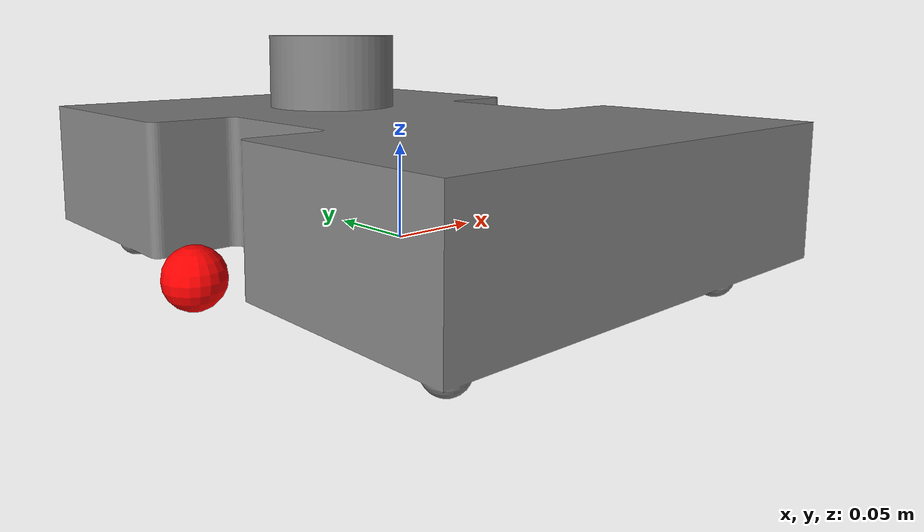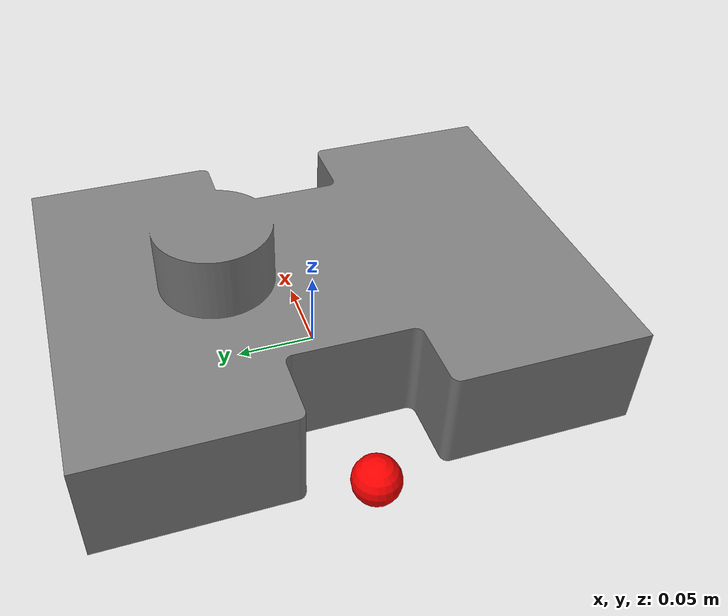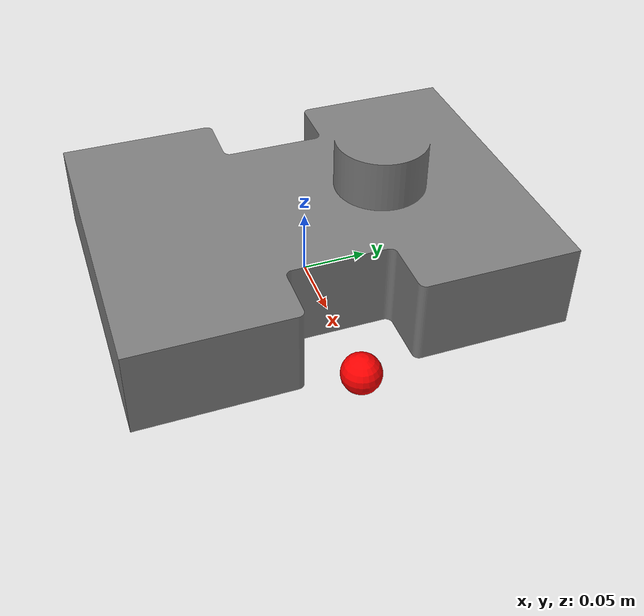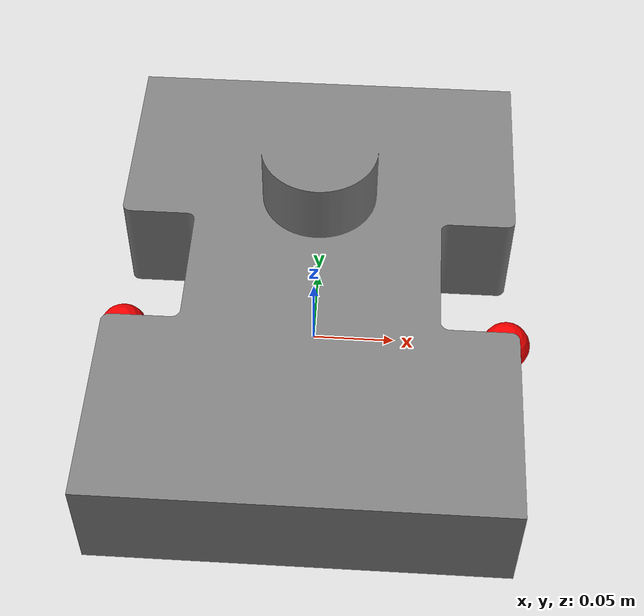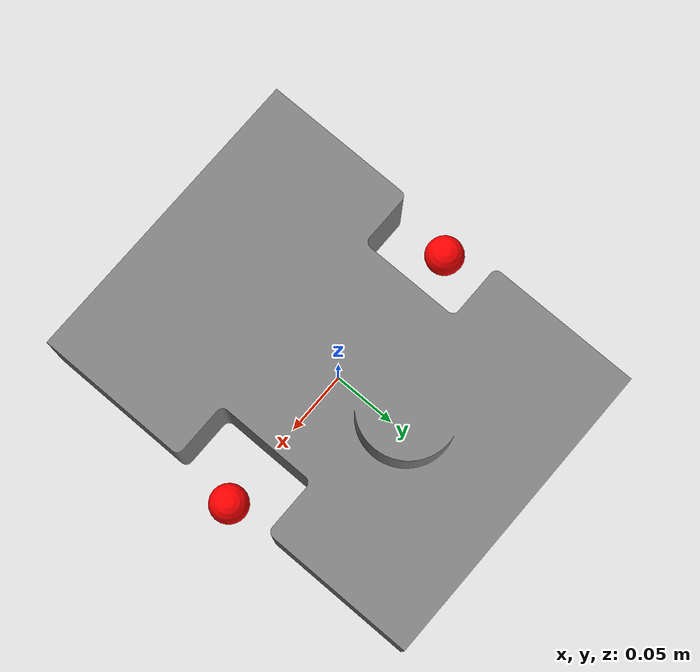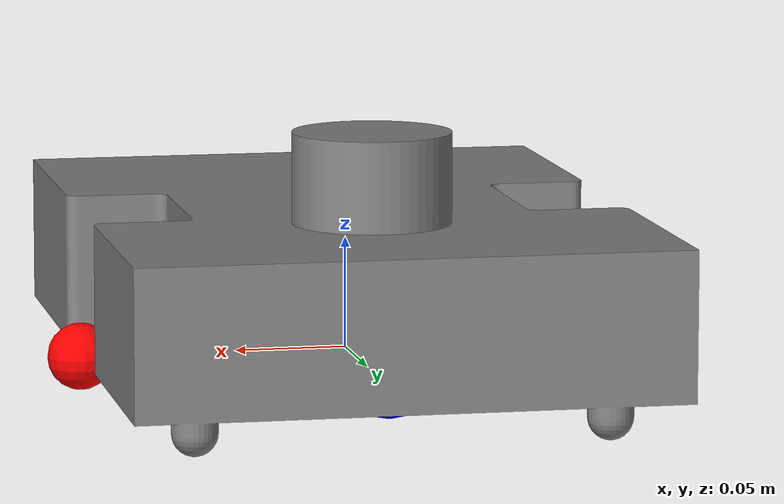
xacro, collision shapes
<?xml version="1.0"?>
<robot xmlns:xacro="http://www.ros.org/wiki/xacro">

    <xacro:include filename="$(find articubot_two)/description/inertial_macros.xacro" />
    <!-- BASE LINK -->

    <link name="base_link">

    </link>

    <!-- BASE_footprint LINK -->

    <joint name="base_footprint_joint" type="fixed">
        <parent link="base_link"/>
        <child link="base_footprint"/>
        <origin xyz="0 0 0" rpy="0 0 0"/>
    </joint>
    <link name="base_footprint">
    </link>

    <!-- CHASSIS LINK -->

    <joint name="chassis_joint" type="fixed">
        <parent link="base_link"/>
        <child link="chassis"/>
        <origin xyz="0 0 0" rpy="0 0 0"/>
    </joint>
    <link name="chassis">
        <visual>
            <origin xyz="0 0 0" rpy="0 0 0"/>
            <geometry>
                <mesh filename="file://$(find articubot_two)/meshes/chassis.stl" scale="0.001 0.001 0.001"/>
            </geometry>
            <material name="grey">
                <color rgba="0.5 0.5 0.5 1"/>
            </material>
        </visual>
        <collision>
            <geometry>
                <mesh filename="file://$(find articubot_two)/meshes/chassis.stl" scale="0.001 0.001 0.001"/>
            </geometry>
        </collision>
        <xacro:inertial_box mass="1.0" x="0.24" y="0.18" z="0.04">
            <origin xyz="0 0 0" rpy="0 0 0"/>
        </xacro:inertial_box>
    </link>
    <gazebo reference="chassis">
        <material>Gazebo/Orange</material>
    </gazebo>

    <!-- LEFT WHEEL LINK -->

    <joint name="left_wheel_joint" type="continuous">
        <parent link="base_link"/>
        <child link="left_wheel"/>
        <origin xyz="0 0.09 0.02" rpy="${-pi/2} 0 0"/>
        <axis xyz="0 0 1"/>
    </joint>
    <link name="left_wheel">
        <visual>
            <geometry>
                <mesh filename="file://$(find articubot_two)/meshes/wheel.stl" scale="0.001 0.001 0.001"/>
            </geometry>
            <material name="blue">
                <color rgba="0 0 1 1"/>
            </material>
        </visual>
        <collision>
            <geometry>
                <sphere radius="0.035" />
            </geometry>
        </collision>
        <xacro:inertial_cylinder mass="0.2" radius="0.07" length="0.02">
            <origin xyz="0 0 0" rpy="0 0 0"/>
        </xacro:inertial_cylinder>
    </link>
    <gazebo reference="left_wheel">
        <material>Gazebo/Blue</material>
        <mu1>1.0</mu1>
        <mu2>1.0</mu2>
    </gazebo>

    <!-- RIGHT WHEEL LINK -->

    <joint name="right_wheel_joint" type="continuous">
        <parent link="base_link"/>
        <child link="right_wheel"/>
        <origin xyz="0 -0.09 0.02" rpy="${pi/2} 0 0"/>
        <axis xyz="0 0 -1"/>
    </joint>
    <link name="right_wheel">
        <visual>
            <geometry>
                <mesh filename="file://$(find articubot_two)/meshes/wheel.stl" scale="0.001 0.001 0.001"/>
            </geometry>
            <material name="blue">
                <color rgba="0 0 1 1"/>
            </material>
        </visual>
        <collision>
            <geometry>
                <sphere radius="0.035" />
            </geometry>
        </collision>
        <xacro:inertial_cylinder mass="0.2" radius="0.07" length="0.02">
            <origin xyz="0 0 0" rpy="0 0 0"/>
        </xacro:inertial_cylinder>
    </link>
    <gazebo reference="right_wheel">
        <material>Gazebo/Blue</material>
        <mu1>1.0</mu1>
        <mu2>1.0</mu2>
    </gazebo>

    <!-- FRONT CASTER WHEEL LINK -->

    <joint name="front_caster_wheel_one_joint" type="fixed">
        <parent link="chassis"/>
        <child link="front_caster_wheel_one"/>
        <origin xyz="0.12 0 0" rpy="0 0 0"/>
    </joint>
    <link name="front_caster_wheel_one">
        <visual>
            <geometry>
                <sphere radius="0.01495" />
            </geometry>
            <material name="red">
                <color rgba="1 0 0 1"/>
            </material>
        </visual>
        <collision>
            <geometry>
                <sphere radius="0.01495" />
            </geometry>
        </collision>
        <xacro:inertial_sphere mass="0.1" radius="0.01495">
            <origin xyz="0 0 0" rpy="0 0 0"/>
        </xacro:inertial_sphere>
    </link>
    <gazebo reference="front_caster_wheel_one">
        <material>Gazebo/Black</material>
        <mu1>0.0001</mu1>
        <mu2>0.0001</mu2>
    </gazebo>

    <!-- Back caster wheel -->

    <joint name="back_caster_wheel_one_joint" type="fixed">
        <parent link="chassis"/>
        <child link="back_caster_wheel_one"/>
        <origin xyz="-0.12 0 0" rpy="0 0 0"/>
    </joint>
    <link name="back_caster_wheel_one">
        <visual>
            <geometry>
                <sphere radius="0.01495" />
            </geometry>
            <material name="red">
                <color rgba="1 0 0 1"/>
            </material>
        </visual>
        <collision>
            <geometry>
                <sphere radius="0.01495" />
            </geometry>
        </collision>
        <xacro:inertial_sphere mass="0.1" radius="0.01495">
            <origin xyz="0 0 0" rpy="0 0 0"/>
        </xacro:inertial_sphere>
    </link>
    <gazebo reference="back_caster_wheel_one">
        <material>Gazebo/Black</material>
        <mu1>0.0001</mu1>
        <mu2>0.0001</mu2>
    </gazebo>

</robot>
